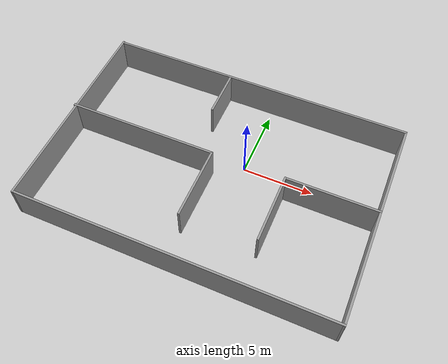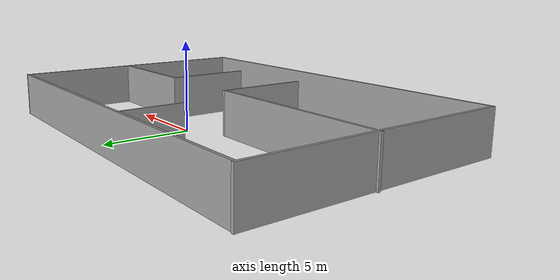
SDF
<?xml version='1.0'?>
<sdf version='1.7'>
  <model name='room2'>
    <pose>-1.47088 -1.65721 0 0 -0 0</pose>
    <link name='Wall_10'>
      <collision name='Wall_10_Collision'>
        <geometry>
          <box>
            <size>5.25 0.15 2.5</size>
          </box>
        </geometry>
        <pose>0 0 1.25 0 -0 0</pose>
      </collision>
      <visual name='Wall_10_Visual'>
        <pose>0 0 1.25 0 -0 0</pose>
        <geometry>
          <box>
            <size>5.25 0.15 2.5</size>
          </box>
        </geometry>
        <material>
          <script>
            <uri>file://media/materials/scripts/gazebo.material</uri>
            <name>Gazebo/Grey</name>
          </script>
          <ambient>1 1 1 1</ambient>
        </material>
        <meta>
          <layer>0</layer>
        </meta>
      </visual>
      <pose>-0.505851 -2.06642 0 0 -0 -1.5708</pose>
    </link>
    <link name='Wall_13'>
      <collision name='Wall_13_Collision'>
        <geometry>
          <box>
            <size>5 0.15 2.5</size>
          </box>
        </geometry>
        <pose>0 0 1.25 0 -0 0</pose>
      </collision>
      <visual name='Wall_13_Visual'>
        <pose>0 0 1.25 0 -0 0</pose>
        <geometry>
          <box>
            <size>5 0.15 2.5</size>
          </box>
        </geometry>
        <material>
          <script>
            <uri>file://media/materials/scripts/gazebo.material</uri>
            <name>Gazebo/Grey</name>
          </script>
          <ambient>1 1 1 1</ambient>
        </material>
        <meta>
          <layer>0</layer>
        </meta>
      </visual>
      <pose>4.70681 -1.8906 0 0 -0 1.5708</pose>
    </link>
    <link name='Wall_14'>
      <collision name='Wall_14_Collision'>
        <geometry>
          <box>
            <size>6.5 0.15 2.5</size>
          </box>
        </geometry>
        <pose>0 0 1.25 0 -0 0</pose>
      </collision>
      <visual name='Wall_14_Visual'>
        <pose>0 0 1.25 0 -0 0</pose>
        <geometry>
          <box>
            <size>6.5 0.15 2.5</size>
          </box>
        </geometry>
        <material>
          <script>
            <uri>file://media/materials/scripts/gazebo.material</uri>
            <name>Gazebo/Grey</name>
          </script>
          <ambient>1 1 1 1</ambient>
        </material>
        <meta>
          <layer>0</layer>
        </meta>
      </visual>
      <pose>7.88181 0.534404 0 0 -0 0</pose>
    </link>
    <link name='Wall_17'>
      <collision name='Wall_17_Collision'>
        <geometry>
          <box>
            <size>3.5 0.15 2.5</size>
          </box>
        </geometry>
        <pose>0 0 1.25 0 -0 0</pose>
      </collision>
      <visual name='Wall_17_Visual'>
        <pose>0 0 1.25 0 -0 0</pose>
        <geometry>
          <box>
            <size>3.5 0.15 2.5</size>
          </box>
        </geometry>
        <material>
          <script>
            <uri>file://media/materials/scripts/gazebo.material</uri>
            <name>Gazebo/Grey</name>
          </script>
          <ambient>1 1 1 1</ambient>
        </material>
        <meta>
          <layer>0</layer>
        </meta>
      </visual>
      <pose>-1.99972 5.66567 0 0 -0 1.5708</pose>
    </link>
    <link name='Wall_4'>
      <collision name='Wall_4_Collision'>
        <geometry>
          <box>
            <size>22 0.15 2.5</size>
          </box>
        </geometry>
        <pose>0 0 1.25 0 -0 0</pose>
      </collision>
      <visual name='Wall_4_Visual'>
        <pose>0 0 1.25 0 -0 0</pose>
        <geometry>
          <box>
            <size>22 0.15 2.5</size>
          </box>
        </geometry>
        <material>
          <script>
            <uri>file://media/materials/scripts/gazebo.material</uri>
            <name>Gazebo/Grey</name>
          </script>
          <ambient>1 1 1 1</ambient>
        </material>
        <meta>
          <layer>0</layer>
        </meta>
      </visual>
      <pose>0.057483 7.3747 0 0 -0 0</pose>
    </link>
    <link name='Wall_5'>
      <collision name='Wall_5_Collision'>
        <geometry>
          <box>
            <size>14.95 0.15 2.5</size>
          </box>
        </geometry>
        <pose>0 0 1.25 0 -0 0</pose>
      </collision>
      <visual name='Wall_5_Visual'>
        <pose>0 0 1.25 0 -0 0</pose>
        <geometry>
          <box>
            <size>14.95 0.15 2.5</size>
          </box>
        </geometry>
        <material>
          <script>
            <uri>file://media/materials/scripts/gazebo.material</uri>
            <name>Gazebo/Grey</name>
          </script>
          <ambient>1 1 1 1</ambient>
        </material>
        <meta>
          <layer>0</layer>
        </meta>
      </visual>
      <pose>11.0748 -0.025024 0 0 -0 -1.56664</pose>
    </link>
    <link name='Wall_6'>
      <collision name='Wall_6_Collision'>
        <geometry>
          <box>
            <size>22.25 0.15 2.5</size>
          </box>
        </geometry>
        <pose>0 0 1.25 0 -0 0</pose>
      </collision>
      <visual name='Wall_6_Visual'>
        <pose>0 0 1.25 0 -0 0</pose>
        <geometry>
          <box>
            <size>22.25 0.15 2.5</size>
          </box>
        </geometry>
        <material>
          <script>
            <uri>file://media/materials/scripts/gazebo.material</uri>
            <name>Gazebo/Grey</name>
          </script>
          <ambient>1 1 1 1</ambient>
        </material>
        <meta>
          <layer>0</layer>
        </meta>
      </visual>
      <pose>0.055539 -7.42475 0 0 -0 3.14159</pose>
    </link>
    <link name='Wall_7'>
      <collision name='Wall_7_Collision'>
        <geometry>
          <box>
            <size>15 0.15 2.5</size>
          </box>
        </geometry>
        <pose>0 0 1.25 0 -0 0</pose>
      </collision>
      <visual name='Wall_7_Visual'>
        <pose>0 0 1.25 0 -0 0</pose>
        <geometry>
          <box>
            <size>15 0.15 2.5</size>
          </box>
        </geometry>
        <material>
          <script>
            <uri>file://media/materials/scripts/gazebo.material</uri>
            <name>Gazebo/Grey</name>
          </script>
          <ambient>1 1 1 1</ambient>
        </material>
        <meta>
          <layer>0</layer>
        </meta>
      </visual>
      <pose>-10.9945 0.000251 0 0 -0 1.5708</pose>
    </link>
    <link name='Wall_9'>
      <collision name='Wall_9_Collision'>
        <geometry>
          <box>
            <size>10.75 0.15 2.5</size>
          </box>
        </geometry>
        <pose>0 0 1.25 0 -0 0</pose>
      </collision>
      <visual name='Wall_9_Visual'>
        <pose>0 0 1.25 0 -0 0</pose>
        <geometry>
          <box>
            <size>10.75 0.15 2.5</size>
          </box>
        </geometry>
        <material>
          <script>
            <uri>file://media/materials/scripts/gazebo.material</uri>
            <name>Gazebo/Grey</name>
          </script>
          <ambient>1 1 1 1</ambient>
        </material>
        <meta>
          <layer>0</layer>
        </meta>
      </visual>
      <pose>-5.80585 0.483578 0 0 -0 0</pose>
    </link>
    <static>1</static>
  </model>
</sdf>
